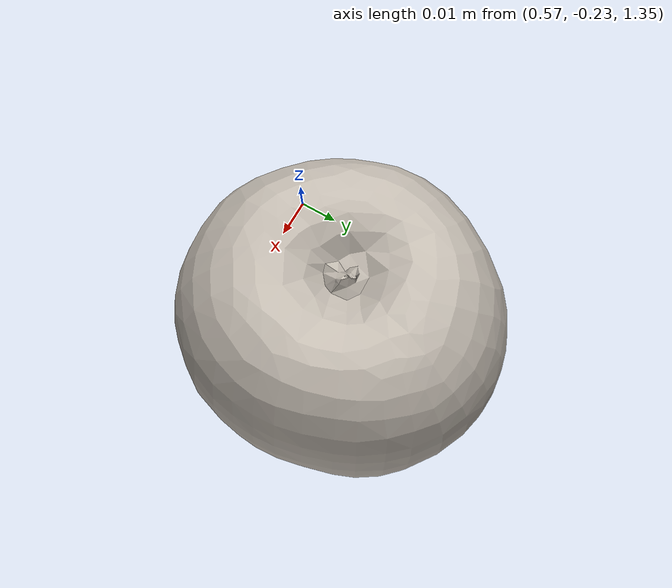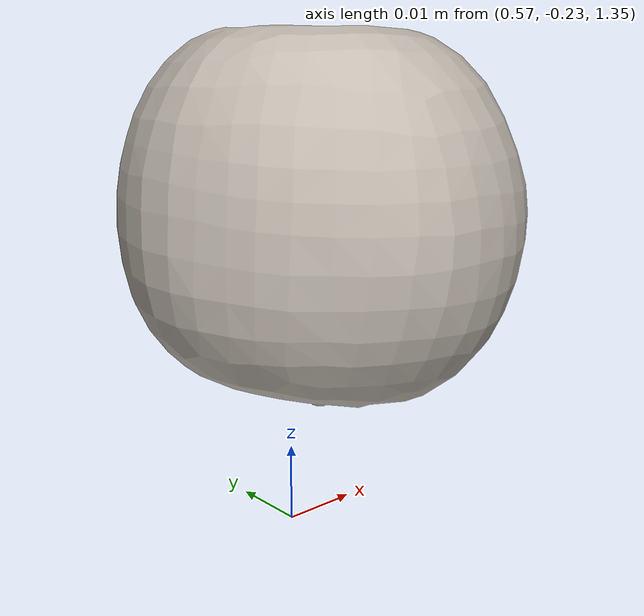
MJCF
<mujoco model="apple_12">
  <asset>
    <mesh file="../objects/bigym/apple_6/visual/model_normalized_0.obj" name="apple_6_model_normalized_0_vis" scale="0.07 0.07 0.07" refquat="1.0 0.0 0.0 0.0"/>
    <mesh file="../objects/bigym/apple_6/collision/model_normalized_collision_22.obj" name="apple_6_model_normalized_collision_22._coll" scale="0.07 0.07 0.07" refquat="1.0 0.0 0.0 0.0"/>
    <mesh file="../objects/bigym/apple_6/collision/model_normalized_collision_23.obj" name="apple_6_model_normalized_collision_23._coll" scale="0.07 0.07 0.07" refquat="1.0 0.0 0.0 0.0"/>
    <mesh file="../objects/bigym/apple_6/collision/model_normalized_collision_21.obj" name="apple_6_model_normalized_collision_21._coll" scale="0.07 0.07 0.07" refquat="1.0 0.0 0.0 0.0"/>
    <mesh file="../objects/bigym/apple_6/collision/model_normalized_collision_20.obj" name="apple_6_model_normalized_collision_20._coll" scale="0.07 0.07 0.07" refquat="1.0 0.0 0.0 0.0"/>
    <mesh file="../objects/bigym/apple_6/collision/model_normalized_collision_24.obj" name="apple_6_model_normalized_collision_24._coll" scale="0.07 0.07 0.07" refquat="1.0 0.0 0.0 0.0"/>
    <mesh file="../objects/bigym/apple_6/collision/model_normalized_collision_30.obj" name="apple_6_model_normalized_collision_30._coll" scale="0.07 0.07 0.07" refquat="1.0 0.0 0.0 0.0"/>
    <mesh file="../objects/bigym/apple_6/collision/model_normalized_collision_18.obj" name="apple_6_model_normalized_collision_18._coll" scale="0.07 0.07 0.07" refquat="1.0 0.0 0.0 0.0"/>
    <mesh file="../objects/bigym/apple_6/collision/model_normalized_collision_19.obj" name="apple_6_model_normalized_collision_19._coll" scale="0.07 0.07 0.07" refquat="1.0 0.0 0.0 0.0"/>
    <mesh file="../objects/bigym/apple_6/collision/model_normalized_collision_31.obj" name="apple_6_model_normalized_collision_31._coll" scale="0.07 0.07 0.07" refquat="1.0 0.0 0.0 0.0"/>
    <mesh file="../objects/bigym/apple_6/collision/model_normalized_collision_25.obj" name="apple_6_model_normalized_collision_25._coll" scale="0.07 0.07 0.07" refquat="1.0 0.0 0.0 0.0"/>
    <mesh file="../objects/bigym/apple_6/collision/model_normalized_collision_27.obj" name="apple_6_model_normalized_collision_27._coll" scale="0.07 0.07 0.07" refquat="1.0 0.0 0.0 0.0"/>
    <mesh file="../objects/bigym/apple_6/collision/model_normalized_collision_26.obj" name="apple_6_model_normalized_collision_26._coll" scale="0.07 0.07 0.07" refquat="1.0 0.0 0.0 0.0"/>
    <mesh file="../objects/bigym/apple_6/collision/model_normalized_collision_9.obj" name="apple_6_model_normalized_collision_9._coll" scale="0.07 0.07 0.07" refquat="1.0 0.0 0.0 0.0"/>
    <mesh file="../objects/bigym/apple_6/collision/model_normalized_collision_8.obj" name="apple_6_model_normalized_collision_8._coll" scale="0.07 0.07 0.07" refquat="1.0 0.0 0.0 0.0"/>
    <mesh file="../objects/bigym/apple_6/collision/model_normalized_collision_6.obj" name="apple_6_model_normalized_collision_6._coll" scale="0.07 0.07 0.07" refquat="1.0 0.0 0.0 0.0"/>
    <mesh file="../objects/bigym/apple_6/collision/model_normalized_collision_7.obj" name="apple_6_model_normalized_collision_7._coll" scale="0.07 0.07 0.07" refquat="1.0 0.0 0.0 0.0"/>
    <mesh file="../objects/bigym/apple_6/collision/model_normalized_collision_5.obj" name="apple_6_model_normalized_collision_5._coll" scale="0.07 0.07 0.07" refquat="1.0 0.0 0.0 0.0"/>
    <mesh file="../objects/bigym/apple_6/collision/model_normalized_collision_4.obj" name="apple_6_model_normalized_collision_4._coll" scale="0.07 0.07 0.07" refquat="1.0 0.0 0.0 0.0"/>
    <mesh file="../objects/bigym/apple_6/collision/model_normalized_collision_0.obj" name="apple_6_model_normalized_collision_0._coll" scale="0.07 0.07 0.07" refquat="1.0 0.0 0.0 0.0"/>
    <mesh file="../objects/bigym/apple_6/collision/model_normalized_collision_1.obj" name="apple_6_model_normalized_collision_1._coll" scale="0.07 0.07 0.07" refquat="1.0 0.0 0.0 0.0"/>
    <mesh file="../objects/bigym/apple_6/collision/model_normalized_collision_3.obj" name="apple_6_model_normalized_collision_3._coll" scale="0.07 0.07 0.07" refquat="1.0 0.0 0.0 0.0"/>
    <mesh file="../objects/bigym/apple_6/collision/model_normalized_collision_2.obj" name="apple_6_model_normalized_collision_2._coll" scale="0.07 0.07 0.07" refquat="1.0 0.0 0.0 0.0"/>
    <mesh file="../objects/bigym/apple_6/collision/model_normalized_collision_17.obj" name="apple_6_model_normalized_collision_17._coll" scale="0.07 0.07 0.07" refquat="1.0 0.0 0.0 0.0"/>
    <mesh file="../objects/bigym/apple_6/collision/model_normalized_collision_16.obj" name="apple_6_model_normalized_collision_16._coll" scale="0.07 0.07 0.07" refquat="1.0 0.0 0.0 0.0"/>
    <mesh file="../objects/bigym/apple_6/collision/model_normalized_collision_28.obj" name="apple_6_model_normalized_collision_28._coll" scale="0.07 0.07 0.07" refquat="1.0 0.0 0.0 0.0"/>
    <mesh file="../objects/bigym/apple_6/collision/model_normalized_collision_14.obj" name="apple_6_model_normalized_collision_14._coll" scale="0.07 0.07 0.07" refquat="1.0 0.0 0.0 0.0"/>
    <mesh file="../objects/bigym/apple_6/collision/model_normalized_collision_15.obj" name="apple_6_model_normalized_collision_15._coll" scale="0.07 0.07 0.07" refquat="1.0 0.0 0.0 0.0"/>
    <mesh file="../objects/bigym/apple_6/collision/model_normalized_collision_29.obj" name="apple_6_model_normalized_collision_29._coll" scale="0.07 0.07 0.07" refquat="1.0 0.0 0.0 0.0"/>
    <mesh file="../objects/bigym/apple_6/collision/model_normalized_collision_11.obj" name="apple_6_model_normalized_collision_11._coll" scale="0.07 0.07 0.07" refquat="1.0 0.0 0.0 0.0"/>
    <mesh file="../objects/bigym/apple_6/collision/model_normalized_collision_10.obj" name="apple_6_model_normalized_collision_10._coll" scale="0.07 0.07 0.07" refquat="1.0 0.0 0.0 0.0"/>
    <mesh file="../objects/bigym/apple_6/collision/model_normalized_collision_12.obj" name="apple_6_model_normalized_collision_12._coll" scale="0.07 0.07 0.07" refquat="1.0 0.0 0.0 0.0"/>
    <mesh file="../objects/bigym/apple_6/collision/model_normalized_collision_13.obj" name="apple_6_model_normalized_collision_13._coll" scale="0.07 0.07 0.07" refquat="1.0 0.0 0.0 0.0"/>
    <texture type="2d" name="apple_6_image0" file="../objects/bigym/apple_6/visual/image0.png"/>
    <material name="Material_35.004" texture="apple_6_image0" specular="0.5" shininess="0.15999998099999999"/>
  </asset>

  <default class="main">
    <default class="apple_6">
      <default class="apple_6_visual">
        <geom type="mesh" contype="0" conaffinity="0" group="2"/>
      </default>
      <default class="apple_6_collision">
        <geom type="mesh" group="3" solref="0.004" solimp="0.95 0.98" condim="6"/>
      </default>
    </default>
  </default>

  <worldbody>
      <body name="apple_6" pos="0.6 -0.2 1.38" quat="0 1 0 0">
        <freejoint/>
        <geom class="apple_6_visual" mesh="apple_6_model_normalized_0_vis" material="Material_35.004" mass="0.3"/>
        <geom class="apple_6_collision" mesh="apple_6_model_normalized_collision_22._coll" rgba="0.8 0.8 0.8 0.0"/>
        <geom class="apple_6_collision" mesh="apple_6_model_normalized_collision_23._coll" rgba="0.8 0.8 0.8 0.0"/>
        <geom class="apple_6_collision" mesh="apple_6_model_normalized_collision_21._coll" rgba="0.8 0.8 0.8 0.0"/>
        <geom class="apple_6_collision" mesh="apple_6_model_normalized_collision_20._coll" rgba="0.8 0.8 0.8 0.0"/>
        <geom class="apple_6_collision" mesh="apple_6_model_normalized_collision_24._coll" rgba="0.8 0.8 0.8 0.0"/>
        <geom class="apple_6_collision" mesh="apple_6_model_normalized_collision_30._coll" rgba="0.8 0.8 0.8 0.0"/>
        <geom class="apple_6_collision" mesh="apple_6_model_normalized_collision_18._coll" rgba="0.8 0.8 0.8 0.0"/>
        <geom class="apple_6_collision" mesh="apple_6_model_normalized_collision_19._coll" rgba="0.8 0.8 0.8 0.0"/>
        <geom class="apple_6_collision" mesh="apple_6_model_normalized_collision_31._coll" rgba="0.8 0.8 0.8 0.0"/>
        <geom class="apple_6_collision" mesh="apple_6_model_normalized_collision_25._coll" rgba="0.8 0.8 0.8 0.0"/>
        <geom class="apple_6_collision" mesh="apple_6_model_normalized_collision_27._coll" rgba="0.8 0.8 0.8 0.0"/>
        <geom class="apple_6_collision" mesh="apple_6_model_normalized_collision_26._coll" rgba="0.8 0.8 0.8 0.0"/>
        <geom class="apple_6_collision" mesh="apple_6_model_normalized_collision_9._coll" rgba="0.8 0.8 0.8 0.0"/>
        <geom class="apple_6_collision" mesh="apple_6_model_normalized_collision_8._coll" rgba="0.8 0.8 0.8 0.0"/>
        <geom class="apple_6_collision" mesh="apple_6_model_normalized_collision_6._coll" rgba="0.8 0.8 0.8 0.0"/>
        <geom class="apple_6_collision" mesh="apple_6_model_normalized_collision_7._coll" rgba="0.8 0.8 0.8 0.0"/>
        <geom class="apple_6_collision" mesh="apple_6_model_normalized_collision_5._coll" rgba="0.8 0.8 0.8 0.0"/>
        <geom class="apple_6_collision" mesh="apple_6_model_normalized_collision_4._coll" rgba="0.8 0.8 0.8 0.0"/>
        <geom class="apple_6_collision" mesh="apple_6_model_normalized_collision_0._coll" rgba="0.8 0.8 0.8 0.0"/>
        <geom class="apple_6_collision" mesh="apple_6_model_normalized_collision_1._coll" rgba="0.8 0.8 0.8 0.0"/>
        <geom class="apple_6_collision" mesh="apple_6_model_normalized_collision_3._coll" rgba="0.8 0.8 0.8 0.0"/>
        <geom class="apple_6_collision" mesh="apple_6_model_normalized_collision_2._coll" rgba="0.8 0.8 0.8 0.0"/>
        <geom class="apple_6_collision" mesh="apple_6_model_normalized_collision_17._coll" rgba="0.8 0.8 0.8 0.0"/>
        <geom class="apple_6_collision" mesh="apple_6_model_normalized_collision_16._coll" rgba="0.8 0.8 0.8 0.0"/>
        <geom class="apple_6_collision" mesh="apple_6_model_normalized_collision_28._coll" rgba="0.8 0.8 0.8 0.0"/>
        <geom class="apple_6_collision" mesh="apple_6_model_normalized_collision_14._coll" rgba="0.8 0.8 0.8 0.0"/>
        <geom class="apple_6_collision" mesh="apple_6_model_normalized_collision_15._coll" rgba="0.8 0.8 0.8 0.0"/>
        <geom class="apple_6_collision" mesh="apple_6_model_normalized_collision_29._coll" rgba="0.8 0.8 0.8 0.0"/>
        <geom class="apple_6_collision" mesh="apple_6_model_normalized_collision_11._coll" rgba="0.8 0.8 0.8 0.0"/>
        <geom class="apple_6_collision" mesh="apple_6_model_normalized_collision_10._coll" rgba="0.8 0.8 0.8 0.0"/>
        <geom class="apple_6_collision" mesh="apple_6_model_normalized_collision_12._coll" rgba="0.8 0.8 0.8 0.0"/>
        <geom class="apple_6_collision" mesh="apple_6_model_normalized_collision_13._coll" rgba="0.8 0.8 0.8 0.0"/>
      </body>
  </worldbody>
</mujoco>
